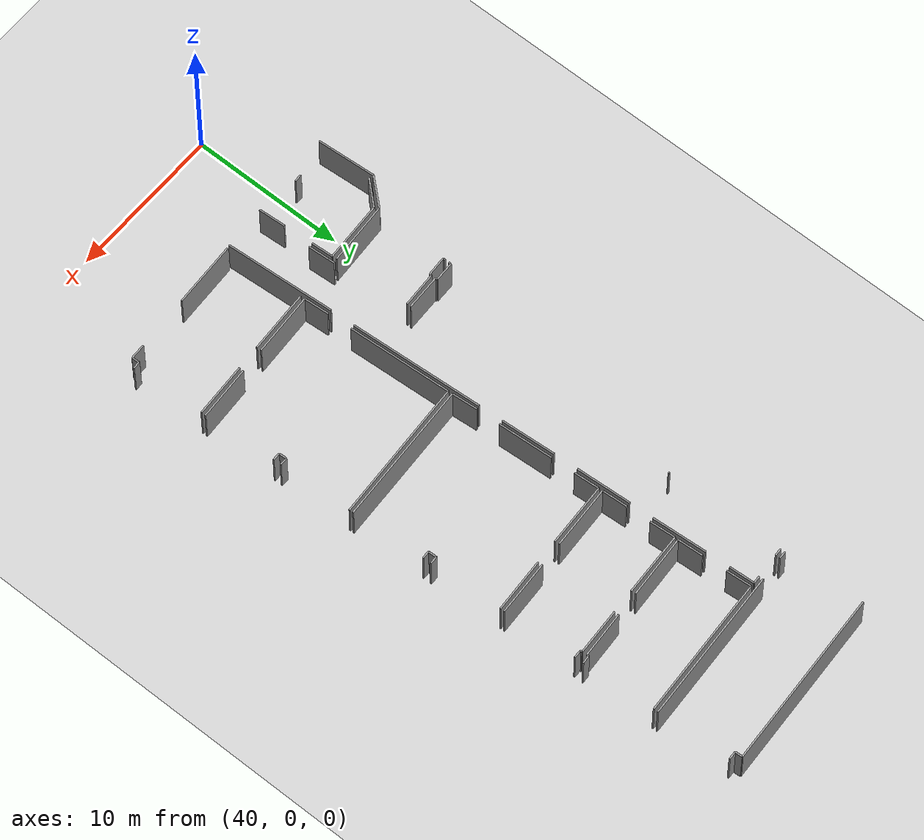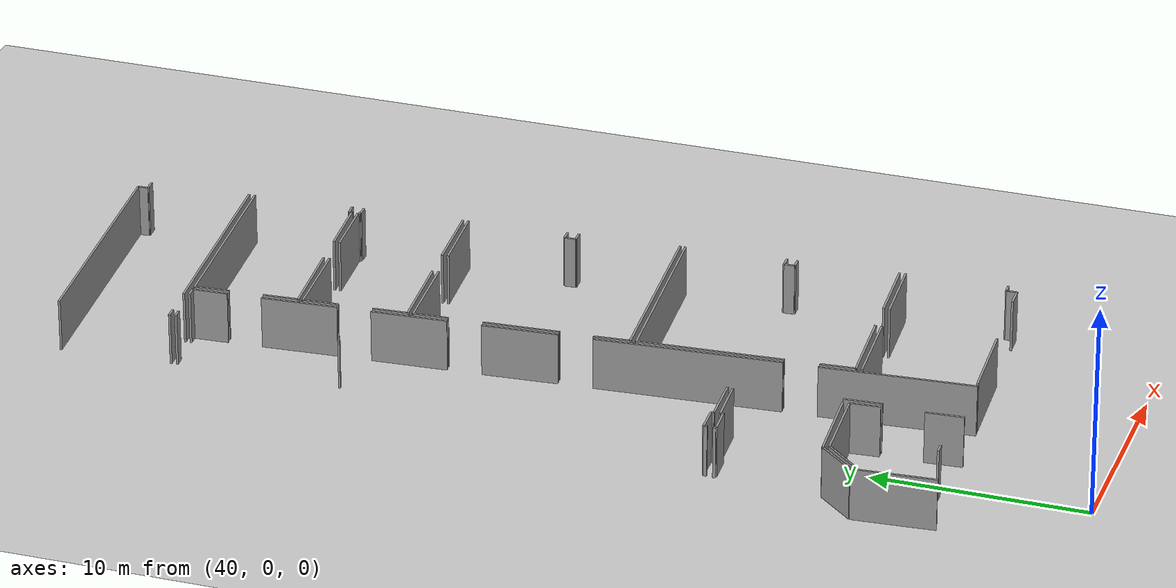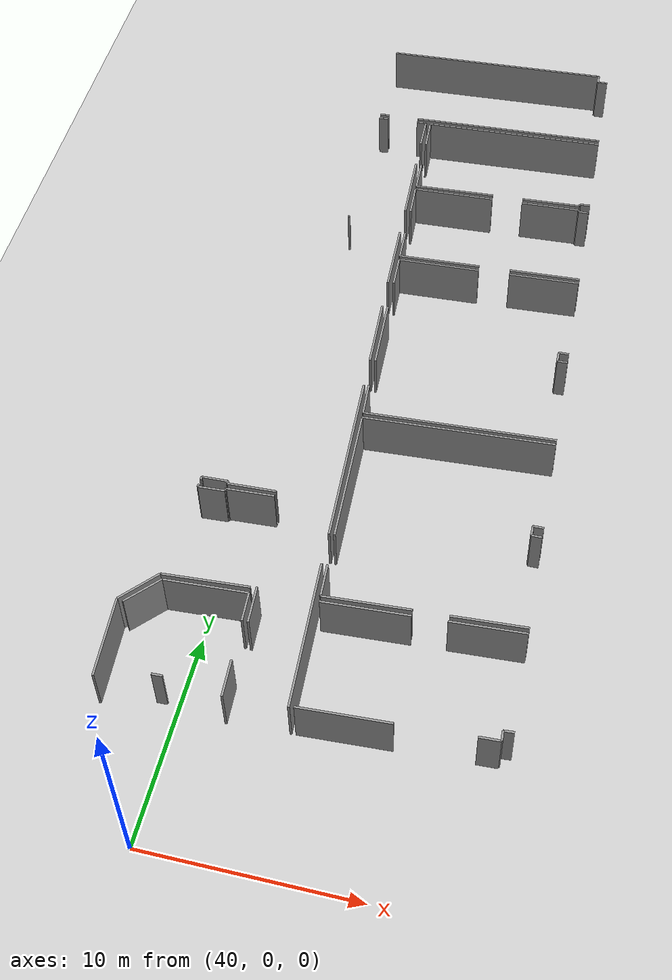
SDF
<sdf version="1.6">
 <world name="default">
  <model name="ground_plane">
   <static>1</static>
   <link name="link">
    <collision name="collision">
     <geometry><plane><normal>0 0 1</normal><size>100 100</size></plane></geometry>
     <surface><friction><ode><mu>100</mu><mu2>50</mu2></ode></friction></surface>
    </collision>
    <visual name="visual">
     <cast_shadows>0</cast_shadows>
     <geometry><plane><normal>0 0 1</normal><size>100 100</size></plane></geometry>
     <material>
      <script><uri>file://media/materials/scripts/gazebo.material</uri><name>Gazebo/Grey</name></script>
     </material>
    </visual>
   </link>
  </model>
  <model name="50025631">
   <static>1</static>
   <link name="Wall_61">
    <collision name="Wall_61_Collision">
     <geometry><box><size>0.0944923891715 0.1 2.5</size></box></geometry>
     <pose>0.0472461945857 0 1.25 0 0 0</pose>
    </collision>
    <visual name="Wall_61_Visual">
     <pose>0.0472461945857 0 1.25 0 0 0</pose>
     <geometry><box><size>0.0944923891715 0.1 2.5</size></box></geometry>
     <material>
      <script><uri>file://media/materials/scripts/gazebo.material</uri><name>Gazebo/Grey</name></script>
      <ambient>1 1 1 1</ambient>
     </material>
    </visual>
    <pose>96.3553117042 -13.9252189264 0 0 0 1.57079632679</pose>
   </link>
   <link name="Wall_75">
    <collision name="Wall_75_Collision">
     <geometry><box><size>0.162385274989 0.1 2.5</size></box></geometry>
     <pose>0.0811926374943 0 1.25 0 0 0</pose>
    </collision>
    <visual name="Wall_75_Visual">
     <pose>0.0811926374943 0 1.25 0 0 0</pose>
     <geometry><box><size>0.162385274989 0.1 2.5</size></box></geometry>
     <material>
      <script><uri>file://media/materials/scripts/gazebo.material</uri><name>Gazebo/Grey</name></script>
      <ambient>1 1 1 1</ambient>
     </material>
    </visual>
    <pose>93.875521518 -31.7877096391 0 0 0 1.60052152807</pose>
   </link>
   <link name="Wall_76">
    <collision name="Wall_76_Collision">
     <geometry><box><size>1.24222462736 0.1 2.5</size></box></geometry>
     <pose>0.621112313678 0 1.25 0 0 0</pose>
    </collision>
    <visual name="Wall_76_Visual">
     <pose>0.621112313678 0 1.25 0 0 0</pose>
     <geometry><box><size>1.24222462736 0.1 2.5</size></box></geometry>
     <material>
      <script><uri>file://media/materials/scripts/gazebo.material</uri><name>Gazebo/Grey</name></script>
      <ambient>1 1 1 1</ambient>
     </material>
    </visual>
    <pose>93.8706952938 -31.6253960996 0 0 0 0.0345642340622</pose>
   </link>
   <link name="Wall_77">
    <collision name="Wall_77_Collision">
     <geometry><box><size>0.125538698447 0.1 2.5</size></box></geometry>
     <pose>0.0627693492234 0 1.25 0 0 0</pose>
    </collision>
    <visual name="Wall_77_Visual">
     <pose>0.0627693492234 0 1.25 0 0 0</pose>
     <geometry><box><size>0.125538698447 0.1 2.5</size></box></geometry>
     <material>
      <script><uri>file://media/materials/scripts/gazebo.material</uri><name>Gazebo/Grey</name></script>
      <ambient>1 1 1 1</ambient>
     </material>
    </visual>
    <pose>95.1121779607 -31.5824681056 0 0 0 -1.41845466703</pose>
   </link>
   <link name="Wall_78">
    <collision name="Wall_78_Collision">
     <geometry><box><size>2.30979743653 0.1 2.5</size></box></geometry>
     <pose>1.15489871827 0 1.25 0 0 0</pose>
    </collision>
    <visual name="Wall_78_Visual">
     <pose>1.15489871827 0 1.25 0 0 0</pose>
     <geometry><box><size>2.30979743653 0.1 2.5</size></box></geometry>
     <material>
      <script><uri>file://media/materials/scripts/gazebo.material</uri><name>Gazebo/Grey</name></script>
      <ambient>1 1 1 1</ambient>
     </material>
    </visual>
    <pose>95.1312288456 -31.7065528694 0 0 0 0.0399852801387</pose>
   </link>
   <link name="Wall_82">
    <collision name="Wall_82_Collision">
     <geometry><box><size>1.78242503243 0.1 2.5</size></box></geometry>
     <pose>0.891212516217 0 1.25 0 0 0</pose>
    </collision>
    <visual name="Wall_82_Visual">
     <pose>0.891212516217 0 1.25 0 0 0</pose>
     <geometry><box><size>1.78242503243 0.1 2.5</size></box></geometry>
     <material>
      <script><uri>file://media/materials/scripts/gazebo.material</uri><name>Gazebo/Grey</name></script>
      <ambient>1 1 1 1</ambient>
     </material>
    </visual>
    <pose>98.1125653287 -38.5056866891 0 0 0 1.63189949428</pose>
   </link>
   <link name="Wall_83">
    <collision name="Wall_83_Collision">
     <geometry><box><size>0.473352282087 0.1 2.5</size></box></geometry>
     <pose>0.236676141043 0 1.25 0 0 0</pose>
    </collision>
    <visual name="Wall_83_Visual">
     <pose>0.236676141043 0 1.25 0 0 0</pose>
     <geometry><box><size>0.473352282087 0.1 2.5</size></box></geometry>
     <material>
      <script><uri>file://media/materials/scripts/gazebo.material</uri><name>Gazebo/Grey</name></script>
      <ambient>1 1 1 1</ambient>
     </material>
    </visual>
    <pose>96.1306382681 -6.19360779308 0 0 0 0.0695487542818</pose>
   </link>
   <link name="Wall_84">
    <collision name="Wall_84_Collision">
     <geometry><box><size>0.492346162562 0.1 2.5</size></box></geometry>
     <pose>0.246173081281 0 1.25 0 0 0</pose>
    </collision>
    <visual name="Wall_84_Visual">
     <pose>0.246173081281 0 1.25 0 0 0</pose>
     <geometry><box><size>0.492346162562 0.1 2.5</size></box></geometry>
     <material>
      <script><uri>file://media/materials/scripts/gazebo.material</uri><name>Gazebo/Grey</name></script>
      <ambient>1 1 1 1</ambient>
     </material>
    </visual>
    <pose>98.2061686765 -6.04780502054 0 0 0 0.0485156183441</pose>
   </link>
   <link name="Wall_85">
    <collision name="Wall_85_Collision">
     <geometry><box><size>1.64021050778 0.1 2.5</size></box></geometry>
     <pose>0.82010525389 0 1.25 0 0 0</pose>
    </collision>
    <visual name="Wall_85_Visual">
     <pose>0.82010525389 0 1.25 0 0 0</pose>
     <geometry><box><size>1.64021050778 0.1 2.5</size></box></geometry>
     <material>
      <script><uri>file://media/materials/scripts/gazebo.material</uri><name>Gazebo/Grey</name></script>
      <ambient>1 1 1 1</ambient>
     </material>
    </visual>
    <pose>98.6979355191 -6.02392791145 0 0 0 -1.51881559139</pose>
   </link>
   <link name="Wall_86">
    <collision name="Wall_86_Collision">
     <geometry><box><size>3.54756360322 0.1 2.5</size></box></geometry>
     <pose>1.77378180161 0 1.25 0 0 0</pose>
    </collision>
    <visual name="Wall_86_Visual">
     <pose>1.77378180161 0 1.25 0 0 0</pose>
     <geometry><box><size>3.54756360322 0.1 2.5</size></box></geometry>
     <material>
      <script><uri>file://media/materials/scripts/gazebo.material</uri><name>Gazebo/Grey</name></script>
      <ambient>1 1 1 1</ambient>
     </material>
    </visual>
    <pose>98.8842531736 -9.25317991021 0 0 0 -1.50509024409</pose>
   </link>
   <link name="Wall_87">
    <collision name="Wall_87_Collision">
     <geometry><box><size>3.55020842633 0.1 2.5</size></box></geometry>
     <pose>1.77510421317 0 1.25 0 0 0</pose>
    </collision>
    <visual name="Wall_87_Visual">
     <pose>1.77510421317 0 1.25 0 0 0</pose>
     <geometry><box><size>3.55020842633 0.1 2.5</size></box></geometry>
     <material>
      <script><uri>file://media/materials/scripts/gazebo.material</uri><name>Gazebo/Grey</name></script>
      <ambient>1 1 1 1</ambient>
     </material>
    </visual>
    <pose>99.201894928 -14.3754548399 0 0 0 -1.51273794779</pose>
   </link>
   <link name="Wall_88">
    <collision name="Wall_88_Collision">
     <geometry><box><size>3.5422910745 0.1 2.5</size></box></geometry>
     <pose>1.77114553725 0 1.25 0 0 0</pose>
    </collision>
    <visual name="Wall_88_Visual">
     <pose>1.77114553725 0 1.25 0 0 0</pose>
     <geometry><box><size>3.5422910745 0.1 2.5</size></box></geometry>
     <material>
      <script><uri>file://media/materials/scripts/gazebo.material</uri><name>Gazebo/Grey</name></script>
      <ambient>1 1 1 1</ambient>
     </material>
    </visual>
    <pose>99.5015018448 -19.511065389 0 0 0 -1.50477670932</pose>
   </link>
   <link name="Wall_89">
    <collision name="Wall_89_Collision">
     <geometry><box><size>8.67664757483 0.1 2.5</size></box></geometry>
     <pose>4.33832378742 0 1.25 0 0 0</pose>
    </collision>
    <visual name="Wall_89_Visual">
     <pose>4.33832378742 0 1.25 0 0 0</pose>
     <geometry><box><size>8.67664757483 0.1 2.5</size></box></geometry>
     <material>
      <script><uri>file://media/materials/scripts/gazebo.material</uri><name>Gazebo/Grey</name></script>
      <ambient>1 1 1 1</ambient>
     </material>
    </visual>
    <pose>99.8263829355 -24.6360074425 0 0 0 -1.50841403971</pose>
   </link>
   <link name="Wall_90">
    <collision name="Wall_90_Collision">
     <geometry><box><size>7.16898052162 0.1 2.5</size></box></geometry>
     <pose>3.58449026081 0 1.25 0 0 0</pose>
    </collision>
    <visual name="Wall_90_Visual">
     <pose>3.58449026081 0 1.25 0 0 0</pose>
     <geometry><box><size>7.16898052162 0.1 2.5</size></box></geometry>
     <material>
      <script><uri>file://media/materials/scripts/gazebo.material</uri><name>Gazebo/Grey</name></script>
      <ambient>1 1 1 1</ambient>
     </material>
    </visual>
    <pose>100.450235913 -34.8897017266 0 0 0 -1.505839109</pose>
   </link>
   <link name="Wall_91">
    <collision name="Wall_91_Collision">
     <geometry><box><size>0.516414765727 0.1 2.5</size></box></geometry>
     <pose>0.258207382864 0 1.25 0 0 0</pose>
    </collision>
    <visual name="Wall_91_Visual">
     <pose>0.258207382864 0 1.25 0 0 0</pose>
     <geometry><box><size>0.516414765727 0.1 2.5</size></box></geometry>
     <material>
      <script><uri>file://media/materials/scripts/gazebo.material</uri><name>Gazebo/Grey</name></script>
      <ambient>1 1 1 1</ambient>
     </material>
    </visual>
    <pose>107.847948537 -0.455735268903 0 0 0 -3.10968911211</pose>
   </link>
   <link name="Wall_92">
    <collision name="Wall_92_Collision">
     <geometry><box><size>0.472718841043 0.1 2.5</size></box></geometry>
     <pose>0.236359420522 0 1.25 0 0 0</pose>
    </collision>
    <visual name="Wall_92_Visual">
     <pose>0.236359420522 0 1.25 0 0 0</pose>
     <geometry><box><size>0.472718841043 0.1 2.5</size></box></geometry>
     <material>
      <script><uri>file://media/materials/scripts/gazebo.material</uri><name>Gazebo/Grey</name></script>
      <ambient>1 1 1 1</ambient>
     </material>
    </visual>
    <pose>107.331796562 -0.472207934059 0 0 0 1.6172931824</pose>
   </link>
   <link name="Wall_93">
    <collision name="Wall_93_Collision">
     <geometry><box><size>11.5415288191 0.1 2.5</size></box></geometry>
     <pose>5.77076440955 0 1.25 0 0 0</pose>
    </collision>
    <visual name="Wall_93_Visual">
     <pose>5.77076440955 0 1.25 0 0 0</pose>
     <geometry><box><size>11.5415288191 0.1 2.5</size></box></geometry>
     <material>
      <script><uri>file://media/materials/scripts/gazebo.material</uri><name>Gazebo/Grey</name></script>
      <ambient>1 1 1 1</ambient>
     </material>
    </visual>
    <pose>107.309824541 -0.0 0 0 0 -3.08006427607</pose>
   </link>
   <link name="Wall_94">
    <collision name="Wall_94_Collision">
     <geometry><box><size>0.490431270202 0.1 2.5</size></box></geometry>
     <pose>0.245215635101 0 1.25 0 0 0</pose>
    </collision>
    <visual name="Wall_94_Visual">
     <pose>0.245215635101 0 1.25 0 0 0</pose>
     <geometry><box><size>0.490431270202 0.1 2.5</size></box></geometry>
     <material>
      <script><uri>file://media/materials/scripts/gazebo.material</uri><name>Gazebo/Grey</name></script>
      <ambient>1 1 1 1</ambient>
     </material>
    </visual>
    <pose>96.1108253478 -5.89895410642 0 0 0 0.0424834948519</pose>
   </link>
   <link name="Wall_95">
    <collision name="Wall_95_Collision">
     <geometry><box><size>9.97735799567 0.1 2.5</size></box></geometry>
     <pose>4.98867899784 0 1.25 0 0 0</pose>
    </collision>
    <visual name="Wall_95_Visual">
     <pose>4.98867899784 0 1.25 0 0 0</pose>
     <geometry><box><size>9.97735799567 0.1 2.5</size></box></geometry>
     <material>
      <script><uri>file://media/materials/scripts/gazebo.material</uri><name>Gazebo/Grey</name></script>
      <ambient>1 1 1 1</ambient>
     </material>
    </visual>
    <pose>98.1819105497 -5.78668089133 0 0 0 0.0601827945988</pose>
   </link>
   <link name="Wall_96">
    <collision name="Wall_96_Collision">
     <geometry><box><size>9.21818930927 0.1 2.5</size></box></geometry>
     <pose>4.60909465463 0 1.25 0 0 0</pose>
    </collision>
    <visual name="Wall_96_Visual">
     <pose>4.60909465463 0 1.25 0 0 0</pose>
     <geometry><box><size>9.21818930927 0.1 2.5</size></box></geometry>
     <material>
      <script><uri>file://media/materials/scripts/gazebo.material</uri><name>Gazebo/Grey</name></script>
      <ambient>1 1 1 1</ambient>
     </material>
    </visual>
    <pose>108.151619643 -5.46522895989 0 0 0 -3.08131984788</pose>
   </link>
   <link name="Wall_97">
    <collision name="Wall_97_Collision">
     <geometry><box><size>1.62430454585 0.1 2.5</size></box></geometry>
     <pose>0.812152272926 0 1.25 0 0 0</pose>
    </collision>
    <visual name="Wall_97_Visual">
     <pose>0.812152272926 0 1.25 0 0 0</pose>
     <geometry><box><size>1.62430454585 0.1 2.5</size></box></geometry>
     <material>
      <script><uri>file://media/materials/scripts/gazebo.material</uri><name>Gazebo/Grey</name></script>
      <ambient>1 1 1 1</ambient>
     </material>
    </visual>
    <pose>98.9501692354 -6.02049875217 0 0 0 -1.49872008135</pose>
   </link>
   <link name="Wall_98">
    <collision name="Wall_98_Collision">
     <geometry><box><size>1.6513630611 0.1 2.5</size></box></geometry>
     <pose>0.825681530548 0 1.25 0 0 0</pose>
    </collision>
    <visual name="Wall_98_Visual">
     <pose>0.825681530548 0 1.25 0 0 0</pose>
     <geometry><box><size>1.6513630611 0.1 2.5</size></box></geometry>
     <material>
      <script><uri>file://media/materials/scripts/gazebo.material</uri><name>Gazebo/Grey</name></script>
      <ambient>1 1 1 1</ambient>
     </material>
    </visual>
    <pose>99.1728105771 -9.23412902529 0 0 0 -1.50845907426</pose>
   </link>
   <link name="Wall_99">
    <collision name="Wall_99_Collision">
     <geometry><box><size>4.07553079133 0.1 2.5</size></box></geometry>
     <pose>2.03776539567 0 1.25 0 0 0</pose>
    </collision>
    <visual name="Wall_99_Visual">
     <pose>2.03776539567 0 1.25 0 0 0</pose>
     <geometry><box><size>4.07553079133 0.1 2.5</size></box></geometry>
     <material>
      <script><uri>file://media/materials/scripts/gazebo.material</uri><name>Gazebo/Grey</name></script>
      <ambient>1 1 1 1</ambient>
     </material>
    </visual>
    <pose>99.2756853556 -10.8822845821 0 0 0 0.0666759563493</pose>
   </link>
   <link name="Wall_100">
    <collision name="Wall_100_Collision">
     <geometry><box><size>2.9905908156 0.1 2.5</size></box></geometry>
     <pose>1.4952954078 0 1.25 0 0 0</pose>
    </collision>
    <visual name="Wall_100_Visual">
     <pose>1.4952954078 0 1.25 0 0 0</pose>
     <geometry><box><size>2.9905908156 0.1 2.5</size></box></geometry>
     <material>
      <script><uri>file://media/materials/scripts/gazebo.material</uri><name>Gazebo/Grey</name></script>
      <ambient>1 1 1 1</ambient>
     </material>
    </visual>
    <pose>104.938497393 -10.5194287275 0 0 0 0.0663845412155</pose>
   </link>
   <link name="Wall_101">
    <collision name="Wall_101_Collision">
     <geometry><box><size>0.124173713982 0.1 2.5</size></box></geometry>
     <pose>0.0620868569912 0 1.25 0 0 0</pose>
    </collision>
    <visual name="Wall_101_Visual">
     <pose>0.0620868569912 0 1.25 0 0 0</pose>
     <geometry><box><size>0.124173713982 0.1 2.5</size></box></geometry>
     <material>
      <script><uri>file://media/materials/scripts/gazebo.material</uri><name>Gazebo/Grey</name></script>
      <ambient>1 1 1 1</ambient>
     </material>
    </visual>
    <pose>107.922501 -10.3210455126 0 0 0 1.53294338252</pose>
   </link>
   <link name="Wall_102">
    <collision name="Wall_102_Collision">
     <geometry><box><size>0.527489643698 0.1 2.5</size></box></geometry>
     <pose>0.263744821849 0 1.25 0 0 0</pose>
    </collision>
    <visual name="Wall_102_Visual">
     <pose>0.263744821849 0 1.25 0 0 0</pose>
     <geometry><box><size>0.527489643698 0.1 2.5</size></box></geometry>
     <material>
      <script><uri>file://media/materials/scripts/gazebo.material</uri><name>Gazebo/Grey</name></script>
      <ambient>1 1 1 1</ambient>
     </material>
    </visual>
    <pose>107.927200218 -10.1969607488 0 0 0 0.0768826905011</pose>
   </link>
   <link name="Wall_103">
    <collision name="Wall_103_Collision">
     <geometry><box><size>0.51573192546 0.1 2.5</size></box></geometry>
     <pose>0.25786596273 0 1.25 0 0 0</pose>
    </collision>
    <visual name="Wall_103_Visual">
     <pose>0.25786596273 0 1.25 0 0 0</pose>
     <geometry><box><size>0.51573192546 0.1 2.5</size></box></geometry>
     <material>
      <script><uri>file://media/materials/scripts/gazebo.material</uri><name>Gazebo/Grey</name></script>
      <ambient>1 1 1 1</ambient>
     </material>
    </visual>
    <pose>108.466721279 -10.7269563671 0 0 0 -3.12312184804</pose>
   </link>
   <link name="Wall_104">
    <collision name="Wall_104_Collision">
     <geometry><box><size>0.11455932128 0.1 2.5</size></box></geometry>
     <pose>0.0572796606402 0 1.25 0 0 0</pose>
    </collision>
    <visual name="Wall_104_Visual">
     <pose>0.0572796606402 0 1.25 0 0 0</pose>
     <geometry><box><size>0.11455932128 0.1 2.5</size></box></geometry>
     <material>
      <script><uri>file://media/materials/scripts/gazebo.material</uri><name>Gazebo/Grey</name></script>
      <ambient>1 1 1 1</ambient>
     </material>
    </visual>
    <pose>107.951077328 -10.7364818096 0 0 0 1.57079632679</pose>
   </link>
   <link name="Wall_105">
    <collision name="Wall_105_Collision">
     <geometry><box><size>3.01291206162 0.1 2.5</size></box></geometry>
     <pose>1.50645603081 0 1.25 0 0 0</pose>
    </collision>
    <visual name="Wall_105_Visual">
     <pose>1.50645603081 0 1.25 0 0 0</pose>
     <geometry><box><size>3.01291206162 0.1 2.5</size></box></geometry>
     <material>
      <script><uri>file://media/materials/scripts/gazebo.material</uri><name>Gazebo/Grey</name></script>
      <ambient>1 1 1 1</ambient>
     </material>
    </visual>
    <pose>107.951077328 -10.6219224883 0 0 0 -3.08452750283</pose>
   </link>
   <link name="Wall_106">
    <collision name="Wall_106_Collision">
     <geometry><box><size>4.10496594494 0.1 2.5</size></box></geometry>
     <pose>2.05248297247 0 1.25 0 0 0</pose>
    </collision>
    <visual name="Wall_106_Visual">
     <pose>2.05248297247 0 1.25 0 0 0</pose>
     <geometry><box><size>4.10496594494 0.1 2.5</size></box></geometry>
     <material>
      <script><uri>file://media/materials/scripts/gazebo.material</uri><name>Gazebo/Grey</name></script>
      <ambient>1 1 1 1</ambient>
     </material>
    </visual>
    <pose>103.369974535 -10.8897779302 0 0 0 -3.08819651792</pose>
   </link>
   <link name="Wall_107">
    <collision name="Wall_107_Collision">
     <geometry><box><size>1.65883502594 0.1 2.5</size></box></geometry>
     <pose>0.829417512969 0 1.25 0 0 0</pose>
    </collision>
    <visual name="Wall_107_Visual">
     <pose>0.829417512969 0 1.25 0 0 0</pose>
     <geometry><box><size>1.65883502594 0.1 2.5</size></box></geometry>
     <material>
      <script><uri>file://media/materials/scripts/gazebo.material</uri><name>Gazebo/Grey</name></script>
      <ambient>1 1 1 1</ambient>
     </material>
    </visual>
    <pose>99.2708591314 -11.1088631067 0 0 0 -1.49853425263</pose>
   </link>
   <link name="Wall_108">
    <collision name="Wall_108_Collision">
     <geometry><box><size>1.63812941688 0.1 2.5</size></box></geometry>
     <pose>0.819064708441 0 1.25 0 0 0</pose>
    </collision>
    <visual name="Wall_108_Visual">
     <pose>0.819064708441 0 1.25 0 0 0</pose>
     <geometry><box><size>1.63812941688 0.1 2.5</size></box></geometry>
     <material>
      <script><uri>file://media/materials/scripts/gazebo.material</uri><name>Gazebo/Grey</name></script>
      <ambient>1 1 1 1</ambient>
     </material>
    </visual>
    <pose>99.4777517416 -14.3608491614 0 0 0 -1.51230456534</pose>
   </link>
   <link name="Wall_109">
    <collision name="Wall_109_Collision">
     <geometry><box><size>4.09248937172 0.1 2.5</size></box></geometry>
     <pose>2.04624468586 0 1.25 0 0 0</pose>
    </collision>
    <visual name="Wall_109_Visual">
     <pose>2.04624468586 0 1.25 0 0 0</pose>
     <geometry><box><size>4.09248937172 0.1 2.5</size></box></geometry>
     <material>
      <script><uri>file://media/materials/scripts/gazebo.material</uri><name>Gazebo/Grey</name></script>
      <ambient>1 1 1 1</ambient>
     </material>
    </visual>
    <pose>99.5735141897 -15.9961771224 0 0 0 0.0588742769782</pose>
   </link>
   <link name="Wall_110">
    <collision name="Wall_110_Collision">
     <geometry><box><size>3.54646486237 0.1 2.5</size></box></geometry>
     <pose>1.77323243119 0 1.25 0 0 0</pose>
    </collision>
    <visual name="Wall_110_Visual">
     <pose>1.77323243119 0 1.25 0 0 0</pose>
     <geometry><box><size>3.54646486237 0.1 2.5</size></box></geometry>
     <material>
      <script><uri>file://media/materials/scripts/gazebo.material</uri><name>Gazebo/Grey</name></script>
      <ambient>1 1 1 1</ambient>
     </material>
    </visual>
    <pose>105.238358322 -15.6574523887 0 0 0 0.0565414130917</pose>
   </link>
   <link name="Wall_111">
    <collision name="Wall_111_Collision">
     <geometry><box><size>0.499237961685 0.1 2.5</size></box></geometry>
     <pose>0.249618980843 0 1.25 0 0 0</pose>
    </collision>
    <visual name="Wall_111_Visual">
     <pose>0.249618980843 0 1.25 0 0 0</pose>
     <geometry><box><size>0.499237961685 0.1 2.5</size></box></geometry>
     <material>
      <script><uri>file://media/materials/scripts/gazebo.material</uri><name>Gazebo/Grey</name></script>
      <ambient>1 1 1 1</ambient>
     </material>
    </visual>
    <pose>109.107339036 -20.9600756955 0 0 0 -3.10367804146</pose>
   </link>
   <link name="Wall_112">
    <collision name="Wall_112_Collision">
     <geometry><box><size>0.543538154419 0.1 2.5</size></box></geometry>
     <pose>0.27176907721 0 1.25 0 0 0</pose>
    </collision>
    <visual name="Wall_112_Visual">
     <pose>0.27176907721 0 1.25 0 0 0</pose>
     <geometry><box><size>0.543538154419 0.1 2.5</size></box></geometry>
     <material>
      <script><uri>file://media/materials/scripts/gazebo.material</uri><name>Gazebo/Grey</name></script>
      <ambient>1 1 1 1</ambient>
     </material>
    </visual>
    <pose>108.608459863 -20.9789995745 0 0 0 1.61731245557</pose>
   </link>
   <link name="Wall_113">
    <collision name="Wall_113_Collision">
     <geometry><box><size>0.499040814138 0.1 2.5</size></box></geometry>
     <pose>0.249520407069 0 1.25 0 0 0</pose>
    </collision>
    <visual name="Wall_113_Visual">
     <pose>0.249520407069 0 1.25 0 0 0</pose>
     <geometry><box><size>0.499040814138 0.1 2.5</size></box></geometry>
     <material>
      <script><uri>file://media/materials/scripts/gazebo.material</uri><name>Gazebo/Grey</name></script>
      <ambient>1 1 1 1</ambient>
     </material>
    </visual>
    <pose>108.583185689 -20.4360493545 0 0 0 0.0254527505898</pose>
   </link>
   <link name="Wall_114">
    <collision name="Wall_114_Collision">
     <geometry><box><size>3.51492154723 0.1 2.5</size></box></geometry>
     <pose>1.75746077361 0 1.25 0 0 0</pose>
    </collision>
    <visual name="Wall_114_Visual">
     <pose>1.75746077361 0 1.25 0 0 0</pose>
     <geometry><box><size>3.51492154723 0.1 2.5</size></box></geometry>
     <material>
      <script><uri>file://media/materials/scripts/gazebo.material</uri><name>Gazebo/Grey</name></script>
      <ambient>1 1 1 1</ambient>
     </material>
    </visual>
    <pose>108.769884361 -15.7180342027 0 0 0 -3.08012725892</pose>
   </link>
   <link name="Wall_115">
    <collision name="Wall_115_Collision">
     <geometry><box><size>4.10135395291 0.1 2.5</size></box></geometry>
     <pose>2.05067697646 0 1.25 0 0 0</pose>
    </collision>
    <visual name="Wall_115_Visual">
     <pose>2.05067697646 0 1.25 0 0 0</pose>
     <geometry><box><size>4.10135395291 0.1 2.5</size></box></geometry>
     <material>
      <script><uri>file://media/materials/scripts/gazebo.material</uri><name>Gazebo/Grey</name></script>
      <ambient>1 1 1 1</ambient>
     </material>
    </visual>
    <pose>103.689521378 -16.0309767389 0 0 0 -3.08842854587</pose>
   </link>
   <link name="Wall_116">
    <collision name="Wall_116_Collision">
     <geometry><box><size>1.64419348468 0.1 2.5</size></box></geometry>
     <pose>0.82209674234 0 1.25 0 0 0</pose>
    </collision>
    <visual name="Wall_116_Visual">
     <pose>0.82209674234 0 1.25 0 0 0</pose>
     <geometry><box><size>1.64419348468 0.1 2.5</size></box></geometry>
     <material>
      <script><uri>file://media/materials/scripts/gazebo.material</uri><name>Gazebo/Grey</name></script>
      <ambient>1 1 1 1</ambient>
     </material>
    </visual>
    <pose>99.5939621395 -16.2489188623 0 0 0 -1.50888345064</pose>
   </link>
   <link name="Wall_117">
    <collision name="Wall_117_Collision">
     <geometry><box><size>3.54956578956 0.1 2.5</size></box></geometry>
     <pose>1.77478289478 0 1.25 0 0 0</pose>
    </collision>
    <visual name="Wall_117_Visual">
     <pose>1.77478289478 0 1.25 0 0 0</pose>
     <geometry><box><size>3.54956578956 0.1 2.5</size></box></geometry>
     <material>
      <script><uri>file://media/materials/scripts/gazebo.material</uri><name>Gazebo/Grey</name></script>
      <ambient>1 1 1 1</ambient>
     </material>
    </visual>
    <pose>99.7769776406 -19.4821080439 0 0 0 -1.50917878258</pose>
   </link>
   <link name="Wall_118">
    <collision name="Wall_118_Collision">
     <geometry><box><size>1.68604227723 0.1 2.5</size></box></geometry>
     <pose>0.843021138615 0 1.25 0 0 0</pose>
    </collision>
    <visual name="Wall_118_Visual">
     <pose>0.843021138615 0 1.25 0 0 0</pose>
     <geometry><box><size>1.68604227723 0.1 2.5</size></box></geometry>
     <material>
      <script><uri>file://media/materials/scripts/gazebo.material</uri><name>Gazebo/Grey</name></script>
      <ambient>1 1 1 1</ambient>
     </material>
    </visual>
    <pose>100.060835826 -24.5844430474 0 0 0 -1.49093930943</pose>
   </link>
   <link name="Wall_119">
    <collision name="Wall_119_Collision">
     <geometry><box><size>9.23191962043 0.1 2.5</size></box></geometry>
     <pose>4.61595981021 0 1.25 0 0 0</pose>
    </collision>
    <visual name="Wall_119_Visual">
     <pose>4.61595981021 0 1.25 0 0 0</pose>
     <geometry><box><size>9.23191962043 0.1 2.5</size></box></geometry>
     <material>
      <script><uri>file://media/materials/scripts/gazebo.material</uri><name>Gazebo/Grey</name></script>
      <ambient>1 1 1 1</ambient>
     </material>
    </visual>
    <pose>100.195335073 -26.2651121145 0 0 0 0.0579229251431</pose>
   </link>
   <link name="Wall_120">
    <collision name="Wall_120_Collision">
     <geometry><box><size>0.499171979815 0.1 2.5</size></box></geometry>
     <pose>0.249585989907 0 1.25 0 0 0</pose>
    </collision>
    <visual name="Wall_120_Visual">
     <pose>0.249585989907 0 1.25 0 0 0</pose>
     <geometry><box><size>0.499171979815 0.1 2.5</size></box></geometry>
     <material>
      <script><uri>file://media/materials/scripts/gazebo.material</uri><name>Gazebo/Grey</name></script>
      <ambient>1 1 1 1</ambient>
     </material>
    </visual>
    <pose>109.714046217 -31.2337099058 0 0 0 -3.12912510623</pose>
   </link>
   <link name="Wall_121">
    <collision name="Wall_121_Collision">
     <geometry><box><size>0.505461604223 0.1 2.5</size></box></geometry>
     <pose>0.252730802112 0 1.25 0 0 0</pose>
    </collision>
    <visual name="Wall_121_Visual">
     <pose>0.252730802112 0 1.25 0 0 0</pose>
     <geometry><box><size>0.505461604223 0.1 2.5</size></box></geometry>
     <material>
      <script><uri>file://media/materials/scripts/gazebo.material</uri><name>Gazebo/Grey</name></script>
      <ambient>1 1 1 1</ambient>
     </material>
    </visual>
    <pose>109.214913033 -31.2399331949 0 0 0 1.60849532919</pose>
   </link>
   <link name="Wall_122">
    <collision name="Wall_122_Collision">
     <geometry><box><size>0.505523366921 0.1 2.5</size></box></geometry>
     <pose>0.252761683461 0 1.25 0 0 0</pose>
    </collision>
    <visual name="Wall_122_Visual">
     <pose>0.252761683461 0 1.25 0 0 0</pose>
     <geometry><box><size>0.505523366921 0.1 2.5</size></box></geometry>
     <material>
      <script><uri>file://media/materials/scripts/gazebo.material</uri><name>Gazebo/Grey</name></script>
      <ambient>1 1 1 1</ambient>
     </material>
    </visual>
    <pose>109.195862148 -30.7348307329 0 0 0 0.0125621532272</pose>
   </link>
   <link name="Wall_123">
    <collision name="Wall_123_Collision">
     <geometry><box><size>9.21824790474 0.1 2.5</size></box></geometry>
     <pose>4.60912395237 0 1.25 0 0 0</pose>
    </collision>
    <visual name="Wall_123_Visual">
     <pose>4.60912395237 0 1.25 0 0 0</pose>
     <geometry><box><size>9.21824790474 0.1 2.5</size></box></geometry>
     <material>
      <script><uri>file://media/materials/scripts/gazebo.material</uri><name>Gazebo/Grey</name></script>
      <ambient>1 1 1 1</ambient>
     </material>
    </visual>
    <pose>109.416852413 -25.9801108762 0 0 0 -3.08053345739</pose>
   </link>
   <link name="Wall_124">
    <collision name="Wall_124_Collision">
     <geometry><box><size>6.753961429 0.1 2.5</size></box></geometry>
     <pose>3.3769807145 0 1.25 0 0 0</pose>
    </collision>
    <visual name="Wall_124_Visual">
     <pose>3.3769807145 0 1.25 0 0 0</pose>
     <geometry><box><size>6.753961429 0.1 2.5</size></box></geometry>
     <material>
      <script><uri>file://media/materials/scripts/gazebo.material</uri><name>Gazebo/Grey</name></script>
      <ambient>1 1 1 1</ambient>
     </material>
    </visual>
    <pose>100.215783023 -26.5426200047 0 0 0 -1.51122556953</pose>
   </link>
   <link name="Wall_125">
    <collision name="Wall_125_Collision">
     <geometry><box><size>1.6334296321 0.1 2.5</size></box></geometry>
     <pose>0.816714816052 0 1.25 0 0 0</pose>
    </collision>
    <visual name="Wall_125_Visual">
     <pose>0.816714816052 0 1.25 0 0 0</pose>
     <geometry><box><size>1.6334296321 0.1 2.5</size></box></geometry>
     <material>
      <script><uri>file://media/materials/scripts/gazebo.material</uri><name>Gazebo/Grey</name></script>
      <ambient>1 1 1 1</ambient>
     </material>
    </visual>
    <pose>100.720631473 -34.8861455615 0 0 0 -1.50473503156</pose>
   </link>
   <link name="Wall_126">
    <collision name="Wall_126_Collision">
     <geometry><box><size>4.08163375514 0.1 2.5</size></box></geometry>
     <pose>2.04081687757 0 1.25 0 0 0</pose>
    </collision>
    <visual name="Wall_126_Visual">
     <pose>2.04081687757 0 1.25 0 0 0</pose>
     <geometry><box><size>4.08163375514 0.1 2.5</size></box></geometry>
     <material>
      <script><uri>file://media/materials/scripts/gazebo.material</uri><name>Gazebo/Grey</name></script>
      <ambient>1 1 1 1</ambient>
     </material>
    </visual>
    <pose>100.828459482 -36.5160122688 0 0 0 0.0623042915852</pose>
   </link>
   <link name="Wall_127">
    <collision name="Wall_127_Collision">
     <geometry><box><size>3.4943929858 0.1 2.5</size></box></geometry>
     <pose>1.7471964929 0 1.25 0 0 0</pose>
    </collision>
    <visual name="Wall_127_Visual">
     <pose>1.7471964929 0 1.25 0 0 0</pose>
     <geometry><box><size>3.4943929858 0.1 2.5</size></box></geometry>
     <material>
      <script><uri>file://media/materials/scripts/gazebo.material</uri><name>Gazebo/Grey</name></script>
      <ambient>1 1 1 1</ambient>
     </material>
    </visual>
    <pose>106.532548437 -36.1755094524 0 0 0 0.06244601613</pose>
   </link>
   <link name="Wall_128">
    <collision name="Wall_128_Collision">
     <geometry><box><size>0.984018759546 0.1 2.5</size></box></geometry>
     <pose>0.492009379773 0 1.25 0 0 0</pose>
    </collision>
    <visual name="Wall_128_Visual">
     <pose>0.492009379773 0 1.25 0 0 0</pose>
     <geometry><box><size>0.984018759546 0.1 2.5</size></box></geometry>
     <material>
      <script><uri>file://media/materials/scripts/gazebo.material</uri><name>Gazebo/Grey</name></script>
      <ambient>1 1 1 1</ambient>
     </material>
    </visual>
    <pose>109.865183238 -41.4794028183 0 0 0 -3.09666167316</pose>
   </link>
   <link name="Wall_129">
    <collision name="Wall_129_Collision">
     <geometry><box><size>4.23615738917 0.1 2.5</size></box></geometry>
     <pose>2.11807869458 0 1.25 0 0 0</pose>
    </collision>
    <visual name="Wall_129_Visual">
     <pose>2.11807869458 0 1.25 0 0 0</pose>
     <geometry><box><size>4.23615738917 0.1 2.5</size></box></geometry>
     <material>
      <script><uri>file://media/materials/scripts/gazebo.material</uri><name>Gazebo/Grey</name></script>
      <ambient>1 1 1 1</ambient>
     </material>
    </visual>
    <pose>105.359140932 -41.7444641304 0 0 0 -3.08681924625</pose>
   </link>
   <link name="Wall_131">
    <collision name="Wall_131_Collision">
     <geometry><box><size>4.08088462782 0.1 2.5</size></box></geometry>
     <pose>2.04044231391 0 1.25 0 0 0</pose>
    </collision>
    <visual name="Wall_131_Visual">
     <pose>2.04044231391 0 1.25 0 0 0</pose>
     <geometry><box><size>4.08088462782 0.1 2.5</size></box></geometry>
     <material>
      <script><uri>file://media/materials/scripts/gazebo.material</uri><name>Gazebo/Grey</name></script>
      <ambient>1 1 1 1</ambient>
     </material>
    </visual>
    <pose>100.850177491 -36.7919960882 0 0 0 0.0587613053823</pose>
   </link>
   <link name="Wall_132">
    <collision name="Wall_132_Collision">
     <geometry><box><size>3.51053896798 0.1 2.5</size></box></geometry>
     <pose>1.75526948399 0 1.25 0 0 0</pose>
    </collision>
    <visual name="Wall_132_Visual">
     <pose>1.75526948399 0 1.25 0 0 0</pose>
     <geometry><box><size>3.51053896798 0.1 2.5</size></box></geometry>
     <material>
      <script><uri>file://media/materials/scripts/gazebo.material</uri><name>Gazebo/Grey</name></script>
      <ambient>1 1 1 1</ambient>
     </material>
    </visual>
    <pose>106.518323776 -36.4494611775 0 0 0 0.0594037868489</pose>
   </link>
   <link name="Wall_133">
    <collision name="Wall_133_Collision">
     <geometry><box><size>0.491750851769 0.1 2.5</size></box></geometry>
     <pose>0.245875425884 0 1.25 0 0 0</pose>
    </collision>
    <visual name="Wall_133_Visual">
     <pose>0.245875425884 0 1.25 0 0 0</pose>
     <geometry><box><size>0.491750851769 0.1 2.5</size></box></geometry>
     <material>
      <script><uri>file://media/materials/scripts/gazebo.material</uri><name>Gazebo/Grey</name></script>
      <ambient>1 1 1 1</ambient>
     </material>
    </visual>
    <pose>110.31732424 -40.9679500613 0 0 0 -3.06325588037</pose>
   </link>
   <link name="Wall_134">
    <collision name="Wall_134_Collision">
     <geometry><box><size>0.474502199015 0.1 2.5</size></box></geometry>
     <pose>0.237251099508 0 1.25 0 0 0</pose>
    </collision>
    <visual name="Wall_134_Visual">
     <pose>0.237251099508 0 1.25 0 0 0</pose>
     <geometry><box><size>0.474502199015 0.1 2.5</size></box></geometry>
     <material>
      <script><uri>file://media/materials/scripts/gazebo.material</uri><name>Gazebo/Grey</name></script>
      <ambient>1 1 1 1</ambient>
     </material>
    </visual>
    <pose>109.827081468 -41.0064328488 0 0 0 -1.49041137849</pose>
   </link>
   <link name="Wall_137">
    <collision name="Wall_137_Collision">
     <geometry><box><size>0.494155016351 0.1 2.5</size></box></geometry>
     <pose>0.247077508176 0 1.25 0 0 0</pose>
    </collision>
    <visual name="Wall_137_Visual">
     <pose>0.247077508176 0 1.25 0 0 0</pose>
     <geometry><box><size>0.494155016351 0.1 2.5</size></box></geometry>
     <material>
      <script><uri>file://media/materials/scripts/gazebo.material</uri><name>Gazebo/Grey</name></script>
      <ambient>1 1 1 1</ambient>
     </material>
    </visual>
    <pose>95.3458688156 -41.875026195 0 0 0 -3.09737143694</pose>
   </link>
   <link name="Wall_141">
    <collision name="Wall_141_Collision">
     <geometry><box><size>1.98537658435 0.1 2.5</size></box></geometry>
     <pose>0.992688292173 0 1.25 0 0 0</pose>
    </collision>
    <visual name="Wall_141_Visual">
     <pose>0.992688292173 0 1.25 0 0 0</pose>
     <geometry><box><size>1.98537658435 0.1 2.5</size></box></geometry>
     <material>
      <script><uri>file://media/materials/scripts/gazebo.material</uri><name>Gazebo/Grey</name></script>
      <ambient>1 1 1 1</ambient>
     </material>
    </visual>
    <pose>92.506651934 -38.7984352873 0 0 0 0.839388676922</pose>
   </link>
   <link name="Wall_142">
    <collision name="Wall_142_Collision">
     <geometry><box><size>3.92155209905 0.1 2.5</size></box></geometry>
     <pose>1.96077604953 0 1.25 0 0 0</pose>
    </collision>
    <visual name="Wall_142_Visual">
     <pose>1.96077604953 0 1.25 0 0 0</pose>
     <geometry><box><size>3.92155209905 0.1 2.5</size></box></geometry>
     <material>
      <script><uri>file://media/materials/scripts/gazebo.material</uri><name>Gazebo/Grey</name></script>
      <ambient>1 1 1 1</ambient>
     </material>
    </visual>
    <pose>93.8327205299 -37.3208486534 0 0 0 0.0580046080762</pose>
   </link>
   <link name="Wall_143">
    <collision name="Wall_143_Collision">
     <geometry><box><size>1.41088626562 0.1 2.5</size></box></geometry>
     <pose>0.70544313281 0 1.25 0 0 0</pose>
    </collision>
    <visual name="Wall_143_Visual">
     <pose>0.70544313281 0 1.25 0 0 0</pose>
     <geometry><box><size>1.41088626562 0.1 2.5</size></box></geometry>
     <material>
      <script><uri>file://media/materials/scripts/gazebo.material</uri><name>Gazebo/Grey</name></script>
      <ambient>1 1 1 1</ambient>
     </material>
    </visual>
    <pose>97.7476773796 -37.0935080935 0 0 0 -1.50810237193</pose>
   </link>
   <link name="Wall_144">
    <collision name="Wall_144_Collision">
     <geometry><box><size>1.76716096543 0.1 2.5</size></box></geometry>
     <pose>0.883580482715 0 1.25 0 0 0</pose>
    </collision>
    <visual name="Wall_144_Visual">
     <pose>0.883580482715 0 1.25 0 0 0</pose>
     <geometry><box><size>1.76716096543 0.1 2.5</size></box></geometry>
     <material>
      <script><uri>file://media/materials/scripts/gazebo.material</uri><name>Gazebo/Grey</name></script>
      <ambient>1 1 1 1</ambient>
     </material>
    </visual>
    <pose>97.9596502258 -40.4523061096 0 0 0 -1.51204472443</pose>
   </link>
   <link name="Wall_161">
    <collision name="Wall_161_Collision">
     <geometry><box><size>0.13894445397 0.1 2.5</size></box></geometry>
     <pose>0.0694722269849 0 1.25 0 0 0</pose>
    </collision>
    <visual name="Wall_161_Visual">
     <pose>0.0694722269849 0 1.25 0 0 0</pose>
     <geometry><box><size>0.13894445397 0.1 2.5</size></box></geometry>
     <material>
      <script><uri>file://media/materials/scripts/gazebo.material</uri><name>Gazebo/Grey</name></script>
      <ambient>1 1 1 1</ambient>
     </material>
    </visual>
    <pose>93.8642179929 -32.0545490338 0 0 0 -1.57079632679</pose>
   </link>
   <link name="Wall_162">
    <collision name="Wall_162_Collision">
     <geometry><box><size>1.27106992718 0.1 2.5</size></box></geometry>
     <pose>0.63553496359 0 1.25 0 0 0</pose>
    </collision>
    <visual name="Wall_162_Visual">
     <pose>0.63553496359 0 1.25 0 0 0</pose>
     <geometry><box><size>1.27106992718 0.1 2.5</size></box></geometry>
     <material>
      <script><uri>file://media/materials/scripts/gazebo.material</uri><name>Gazebo/Grey</name></script>
      <ambient>1 1 1 1</ambient>
     </material>
    </visual>
    <pose>93.8642179929 -32.1934934878 0 0 0 0.0546837443949</pose>
   </link>
   <link name="Wall_163">
    <collision name="Wall_163_Collision">
     <geometry><box><size>0.126243864027 0.1 2.5</size></box></geometry>
     <pose>0.0631219320137 0 1.25 0 0 0</pose>
    </collision>
    <visual name="Wall_163_Visual">
     <pose>0.0631219320137 0 1.25 0 0 0</pose>
     <geometry><box><size>0.126243864027 0.1 2.5</size></box></geometry>
     <material>
      <script><uri>file://media/materials/scripts/gazebo.material</uri><name>Gazebo/Grey</name></script>
      <ambient>1 1 1 1</ambient>
     </material>
    </visual>
    <pose>95.1333879459 -32.1240212608 0 0 0 1.57079632679</pose>
   </link>
   <link name="Wall_164">
    <collision name="Wall_164_Collision">
     <geometry><box><size>2.29568329111 0.1 2.5</size></box></geometry>
     <pose>1.14784164556 0 1.25 0 0 0</pose>
    </collision>
    <visual name="Wall_164_Visual">
     <pose>1.14784164556 0 1.25 0 0 0</pose>
     <geometry><box><size>2.29568329111 0.1 2.5</size></box></geometry>
     <material>
      <script><uri>file://media/materials/scripts/gazebo.material</uri><name>Gazebo/Grey</name></script>
      <ambient>1 1 1 1</ambient>
     </material>
    </visual>
    <pose>95.1333879459 -31.9977773968 0 0 0 0.0550750092191</pose>
   </link>
   <link name="Wall_165">
    <collision name="Wall_165_Collision">
     <geometry><box><size>4.06811364291 0.1 2.5</size></box></geometry>
     <pose>2.03405682145 0 1.25 0 0 0</pose>
    </collision>
    <visual name="Wall_165_Visual">
     <pose>2.03405682145 0 1.25 0 0 0</pose>
     <geometry><box><size>4.06811364291 0.1 2.5</size></box></geometry>
     <material>
      <script><uri>file://media/materials/scripts/gazebo.material</uri><name>Gazebo/Grey</name></script>
      <ambient>1 1 1 1</ambient>
     </material>
    </visual>
    <pose>97.7277374534 -36.7992354245 0 0 0 -3.07551459423</pose>
   </link>
   <link name="Wall_166">
    <collision name="Wall_166_Collision">
     <geometry><box><size>2.19214288736 0.1 2.5</size></box></geometry>
     <pose>1.09607144368 0 1.25 0 0 0</pose>
    </collision>
    <visual name="Wall_166_Visual">
     <pose>1.09607144368 0 1.25 0 0 0</pose>
     <geometry><box><size>2.19214288736 0.1 2.5</size></box></geometry>
     <material>
      <script><uri>file://media/materials/scripts/gazebo.material</uri><name>Gazebo/Grey</name></script>
      <ambient>1 1 1 1</ambient>
     </material>
    </visual>
    <pose>93.6685019019 -37.0678529018 0 0 0 -2.29055831799</pose>
   </link>
   <link name="Wall_167">
    <collision name="Wall_167_Collision">
     <geometry><box><size>3.83138198107 0.1 2.5</size></box></geometry>
     <pose>1.91569099053 0 1.25 0 0 0</pose>
    </collision>
    <visual name="Wall_167_Visual">
     <pose>1.91569099053 0 1.25 0 0 0</pose>
     <geometry><box><size>3.83138198107 0.1 2.5</size></box></geometry>
     <material>
      <script><uri>file://media/materials/scripts/gazebo.material</uri><name>Gazebo/Grey</name></script>
      <ambient>1 1 1 1</ambient>
     </material>
    </visual>
    <pose>92.2234287783 -38.7162624704 0 0 0 -1.50617740952</pose>
   </link>
   <pose>-55.9 48.5496043766 0 0 0 0</pose>
  </model>
 </world>
</sdf>
